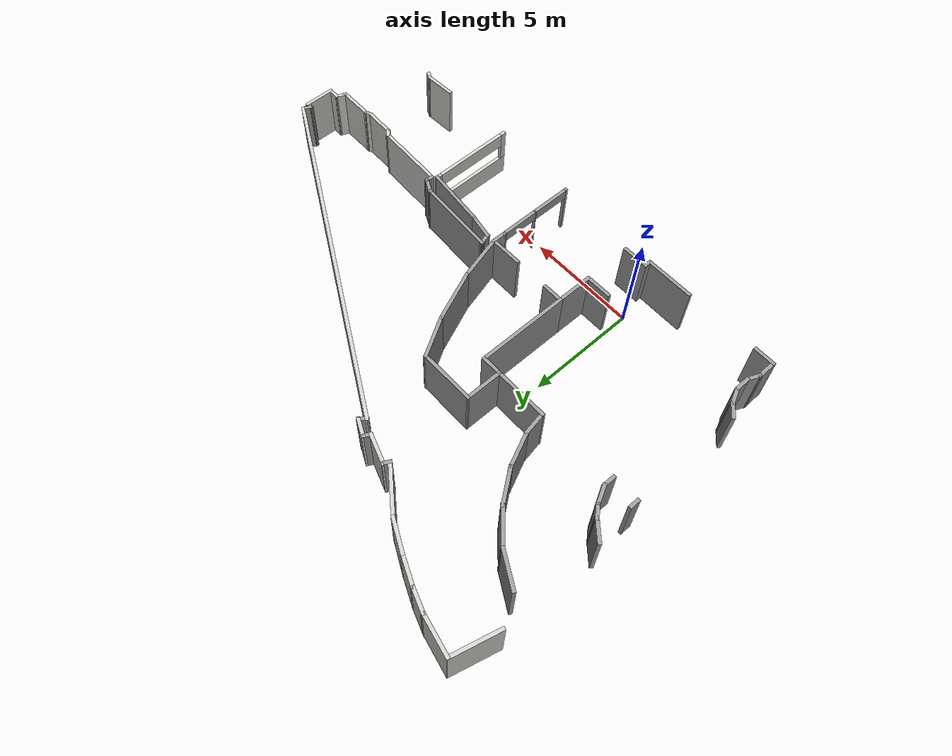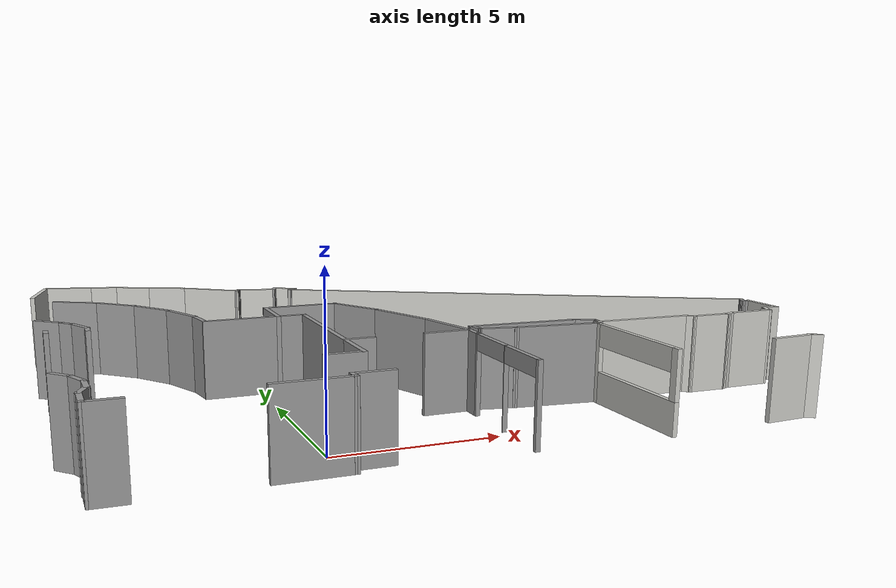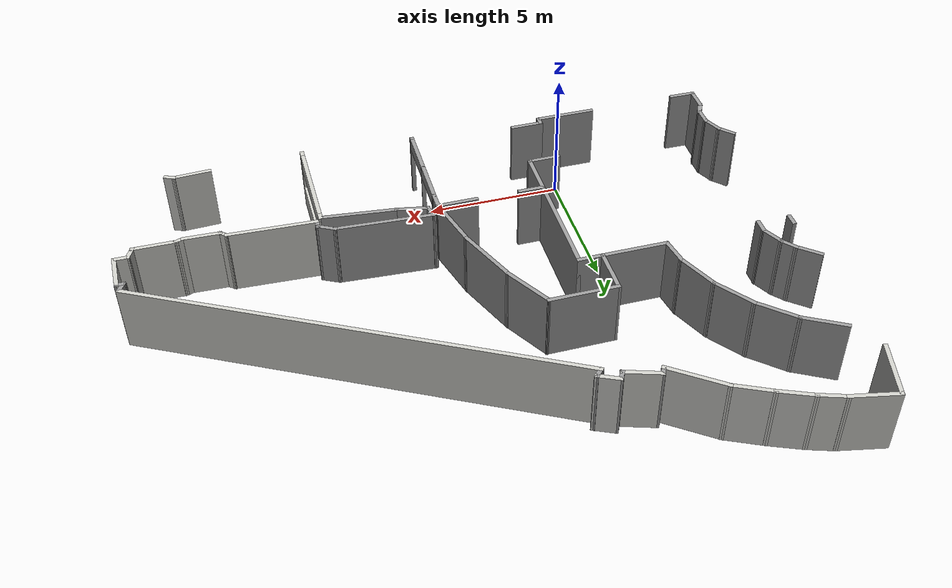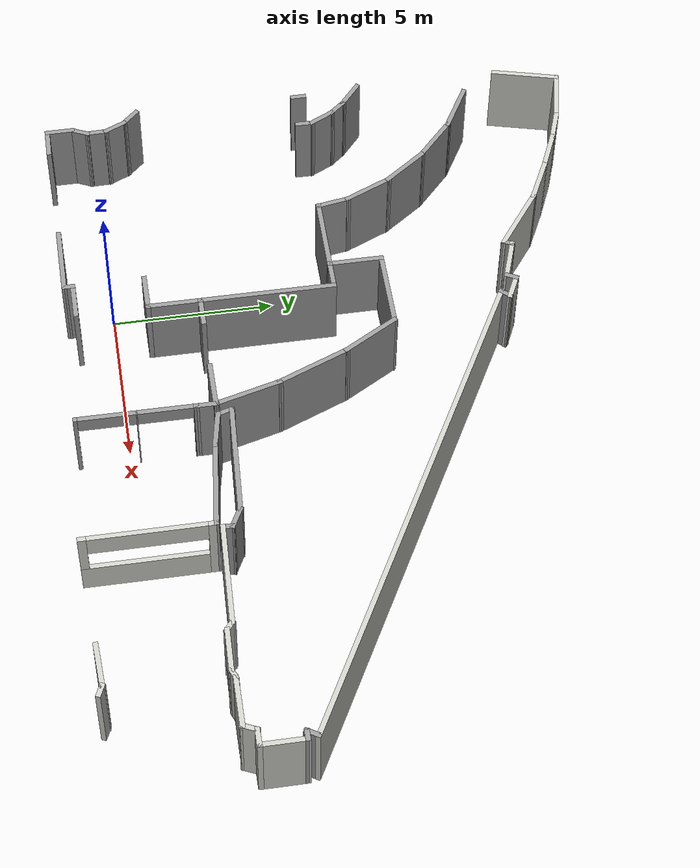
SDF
<sdf version="1.7">
 <model name="model">
  <pose>-4.1341 -0.059214 0 0 -0 0</pose>
  <link name="Wall_10">
   <collision name="Wall_10_Collision">
    <geometry><box><size>1.42547 0.15 2.5</size></box></geometry>
    <pose>0 0 1.25 0 -0 0</pose>
   </collision>
   <visual name="Wall_10_Visual">
    <pose>0 0 1.25 0 -0 0</pose>
    <geometry><box><size>1.42547 0.15 2.5</size></box></geometry>
    <material>
     <script><uri>file://media/materials/scripts/gazebo.material</uri><name>Gazebo/CeilingTiled</name></script>
     <ambient>1 1 1 1</ambient>
    </material>
    <meta><layer>0</layer></meta>
   </visual>
   <pose>17.742 2.04987 0 0 -0 3.11021</pose>
  </link>
  <link name="Wall_11">
   <collision name="Wall_11_Collision">
    <geometry><box><size>0.422349 0.15 2.5</size></box></geometry>
    <pose>0 0 1.25 0 -0 0</pose>
   </collision>
   <visual name="Wall_11_Visual">
    <pose>0 0 1.25 0 -0 0</pose>
    <geometry><box><size>0.422349 0.15 2.5</size></box></geometry>
    <material>
     <script><uri>file://media/materials/scripts/gazebo.material</uri><name>Gazebo/CeilingTiled</name></script>
     <ambient>1 1 1 1</ambient>
    </material>
    <meta><layer>0</layer></meta>
   </visual>
   <pose>16.9987 2.15564 0 0 -0 2.46029</pose>
  </link>
  <link name="Wall_113">
   <collision name="Wall_113_Collision">
    <geometry><box><size>2.16942 0.15 2.5</size></box></geometry>
    <pose>0 0 1.25 0 -0 0</pose>
   </collision>
   <visual name="Wall_113_Visual">
    <pose>0 0 1.25 0 -0 0</pose>
    <geometry><box><size>2.16942 0.15 2.5</size></box></geometry>
    <material>
     <script><uri>file://media/materials/scripts/gazebo.material</uri><name>Gazebo/CeilingTiled</name></script>
     <ambient>0.964706 1 0.972549 1</ambient>
    </material>
    <meta><layer>0</layer></meta>
   </visual>
   <pose>-2.22567 14.2971 0 0 -0 1.31753</pose>
  </link>
  <link name="Wall_118">
   <collision name="Wall_118_Collision">
    <geometry><box><size>2.26593 0.15 2.5</size></box></geometry>
    <pose>0 0 1.25 0 -0 0</pose>
   </collision>
   <visual name="Wall_118_Visual">
    <pose>0 0 1.25 0 -0 0</pose>
    <geometry><box><size>2.26593 0.15 2.5</size></box></geometry>
    <material>
     <script><uri>file://media/materials/scripts/gazebo.material</uri><name>Gazebo/CeilingTiled</name></script>
     <ambient>0.964706 1 0.972549 1</ambient>
    </material>
    <meta><layer>0</layer></meta>
   </visual>
   <pose>3.7645 12.9158 0 0 -0 2.50012</pose>
  </link>
  <link name="Wall_119">
   <collision name="Wall_119_Collision">
    <geometry><box><size>1.52296 0.15 2.5</size></box></geometry>
    <pose>0 0 1.25 0 -0 0</pose>
   </collision>
   <visual name="Wall_119_Visual">
    <pose>0 0 1.25 0 -0 0</pose>
    <geometry><box><size>1.52296 0.15 2.5</size></box></geometry>
    <material>
     <script><uri>file://media/materials/scripts/gazebo.material</uri><name>Gazebo/CeilingTiled</name></script>
     <ambient>0.964706 1 0.972549 1</ambient>
    </material>
    <meta><layer>0</layer></meta>
   </visual>
   <pose>2.30059 13.8514 0 0 -0 2.68533</pose>
  </link>
  <link name="Wall_12">
   <collision name="Wall_12_Collision">
    <geometry><box><size>3.29739 0.15 2.5</size></box></geometry>
    <pose>0 0 1.25 0 -0 0</pose>
   </collision>
   <visual name="Wall_12_Visual">
    <pose>0 0 1.25 0 -0 0</pose>
    <geometry><box><size>3.29739 0.15 2.5</size></box></geometry>
    <material>
     <script><uri>file://media/materials/scripts/gazebo.material</uri><name>Gazebo/CeilingTiled</name></script>
     <ambient>0.964706 1 0.972549 1</ambient>
    </material>
    <meta><layer>0</layer></meta>
   </visual>
   <pose>15.3206 2.30716 0 0 -0 3.0998</pose>
  </link>
  <link name="Wall_120">
   <collision name="Wall_120_Collision">
    <geometry><box><size>1.38613 0.15 2.5</size></box></geometry>
    <pose>0 0 1.25 0 -0 0</pose>
   </collision>
   <visual name="Wall_120_Visual">
    <pose>0 0 1.25 0 -0 0</pose>
    <geometry><box><size>1.38613 0.15 2.5</size></box></geometry>
    <material>
     <script><uri>file://media/materials/scripts/gazebo.material</uri><name>Gazebo/CeilingTiled</name></script>
     <ambient>0.964706 1 0.972549 1</ambient>
    </material>
    <meta><layer>0</layer></meta>
   </visual>
   <pose>1.11722 14.3996 0 0 -0 2.73269</pose>
  </link>
  <link name="Wall_121">
   <collision name="Wall_121_Collision">
    <geometry><box><size>1.10172 0.15 2.5</size></box></geometry>
    <pose>0 0 1.25 0 -0 0</pose>
   </collision>
   <visual name="Wall_121_Visual">
    <pose>0 0 1.25 0 -0 0</pose>
    <geometry><box><size>1.10172 0.15 2.5</size></box></geometry>
    <material>
     <script><uri>file://media/materials/scripts/gazebo.material</uri><name>Gazebo/CeilingTiled</name></script>
     <ambient>0.964706 1 0.972549 1</ambient>
    </material>
    <meta><layer>0</layer></meta>
   </visual>
   <pose>0.100208 14.8003 0 0 -0 2.80979</pose>
  </link>
  <link name="Wall_122">
   <collision name="Wall_122_Collision">
    <geometry><box><size>1.79614 0.15 2.5</size></box></geometry>
    <pose>0 0 1.25 0 -0 0</pose>
   </collision>
   <visual name="Wall_122_Visual">
    <pose>0 0 1.25 0 -0 0</pose>
    <geometry><box><size>1.79614 0.15 2.5</size></box></geometry>
    <material>
     <script><uri>file://media/materials/scripts/gazebo.material</uri><name>Gazebo/CeilingTiled</name></script>
     <ambient>0.964706 1 0.972549 1</ambient>
    </material>
    <meta><layer>0</layer></meta>
   </visual>
   <pose>-1.15499 15.1255 0 0 -0 2.93339</pose>
  </link>
  <link name="Wall_124">
   <collision name="Wall_124_Collision">
    <geometry><box><size>0.404275 0.15 2.5</size></box></geometry>
    <pose>0 0 1.25 0 -0 0</pose>
   </collision>
   <visual name="Wall_124_Visual">
    <pose>0 0 1.25 0 -0 0</pose>
    <geometry><box><size>0.404275 0.15 2.5</size></box></geometry>
    <material>
     <script><uri>file://media/materials/scripts/gazebo.material</uri><name>Gazebo/Grey</name></script>
     <ambient>1 1 1 1</ambient>
    </material>
    <meta><layer>0</layer></meta>
   </visual>
   <pose>4.66935 12.3963 0 0 -0 1.10417</pose>
  </link>
  <link name="Wall_125">
   <collision name="Wall_125_Collision">
    <geometry><box><size>1.41013 0.15 2.5</size></box></geometry>
    <pose>0 0 1.25 0 -0 0</pose>
   </collision>
   <visual name="Wall_125_Visual">
    <pose>0 0 1.25 0 -0 0</pose>
    <geometry><box><size>1.41013 0.15 2.5</size></box></geometry>
    <material>
     <script><uri>file://media/materials/scripts/gazebo.material</uri><name>Gazebo/CeilingTiled</name></script>
     <ambient>0.964706 1 0.972549 1</ambient>
    </material>
    <meta><layer>0</layer></meta>
   </visual>
   <pose>5.3239 12.3095 0 0 -0 -0.323648</pose>
  </link>
  <link name="Wall_126">
   <collision name="Wall_126_Collision">
    <geometry><box><size>0.447598 0.15 2.5</size></box></geometry>
    <pose>0 0 1.25 0 -0 0</pose>
   </collision>
   <visual name="Wall_126_Visual">
    <pose>0 0 1.25 0 -0 0</pose>
    <geometry><box><size>0.447598 0.15 2.5</size></box></geometry>
    <material>
     <script><uri>file://media/materials/scripts/gazebo.material</uri><name>Gazebo/Grey</name></script>
     <ambient>1 1 1 1</ambient>
    </material>
    <meta><layer>0</layer></meta>
   </visual>
   <pose>5.98931 12.2414 0 0 -0 1.09579</pose>
  </link>
  <link name="Wall_127">
   <collision name="Wall_127_Collision">
    <geometry><box><size>0.894139 0.15 2.5</size></box></geometry>
    <pose>0 0 1.25 0 -0 0</pose>
   </collision>
   <visual name="Wall_127_Visual">
    <pose>0 0 1.25 0 -0 0</pose>
    <geometry><box><size>0.894139 0.15 2.5</size></box></geometry>
    <material>
     <script><uri>file://media/materials/scripts/gazebo.material</uri><name>Gazebo/CeilingTiled</name></script>
     <ambient>0.964706 1 0.972549 1</ambient>
    </material>
    <meta><layer>0</layer></meta>
   </visual>
   <pose>6.39384 12.215 0 0 -0 -0.440924</pose>
  </link>
  <link name="Wall_128">
   <collision name="Wall_128_Collision">
    <geometry><box><size>0.468928 0.15 2.5</size></box></geometry>
    <pose>0 0 1.25 0 -0 0</pose>
   </collision>
   <visual name="Wall_128_Visual">
    <pose>0 0 1.25 0 -0 0</pose>
    <geometry><box><size>0.468928 0.15 2.5</size></box></geometry>
    <material>
     <script><uri>file://media/materials/scripts/gazebo.material</uri><name>Gazebo/Grey</name></script>
     <ambient>1 1 1 1</ambient>
    </material>
    <meta><layer>0</layer></meta>
   </visual>
   <pose>6.62336 11.9379 0 0 -0 -2.30603</pose>
  </link>
  <link name="Wall_129">
   <collision name="Wall_129_Collision">
    <geometry><box><size>16.2931 0.15 2.5</size></box></geometry>
    <pose>0 0 1.25 0 -0 0</pose>
   </collision>
   <visual name="Wall_129_Visual">
    <pose>0 0 1.25 0 -0 0</pose>
    <geometry><box><size>16.2931 0.15 2.5</size></box></geometry>
    <material>
     <script><uri>file://media/materials/scripts/gazebo.material</uri><name>Gazebo/CeilingTiled</name></script>
     <ambient>0.964706 1 0.972549 1</ambient>
    </material>
    <meta><layer>0</layer></meta>
   </visual>
   <pose>13.6044 7.95817 0 0 -0 -0.498838</pose>
  </link>
  <link name="Wall_13">
   <collision name="Wall_13_Collision">
    <geometry><box><size>0.430684 0.15 2.5</size></box></geometry>
    <pose>0 0 1.25 0 -0 0</pose>
   </collision>
   <visual name="Wall_13_Visual">
    <pose>0 0 1.25 0 -0 0</pose>
    <geometry><box><size>0.430684 0.15 2.5</size></box></geometry>
    <material>
     <script><uri>file://media/materials/scripts/gazebo.material</uri><name>Gazebo/Grey</name></script>
     <ambient>1 1 1 1</ambient>
    </material>
    <meta><layer>0</layer></meta>
   </visual>
   <pose>13.7569 2.51299 0 0 -0 1.50965</pose>
  </link>
  <link name="Wall_16">
   <collision name="Wall_16_Collision">
    <geometry><box><size>0.771179 0.15 2.5</size></box></geometry>
    <pose>0 0 1.25 0 -0 0</pose>
   </collision>
   <visual name="Wall_16_Visual">
    <pose>0 0 1.25 0 -0 0</pose>
    <geometry><box><size>0.771179 0.15 2.5</size></box></geometry>
    <material>
     <script><uri>file://media/materials/scripts/gazebo.material</uri><name>Gazebo/Grey</name></script>
     <ambient>1 1 1 1</ambient>
    </material>
    <meta><layer>0</layer></meta>
   </visual>
   <pose>13.4901 2.7968 0 0 -0 2.6605</pose>
  </link>
  <link name="Wall_17">
   <collision name="Wall_17_Collision">
    <geometry><box><size>3.65354 0.15 2.5</size></box></geometry>
    <pose>0 0 1.25 0 -0 0</pose>
   </collision>
   <visual name="Wall_17_Visual">
    <pose>0 0 1.25 0 -0 0</pose>
    <geometry><box><size>3.65354 0.15 2.5</size></box></geometry>
    <material>
     <script><uri>file://media/materials/scripts/gazebo.material</uri><name>Gazebo/Grey</name></script>
     <ambient>1 1 1 1</ambient>
    </material>
    <meta><layer>0</layer></meta>
   </visual>
   <pose>11.4658 3.03915 0 0 -0 3.08526</pose>
  </link>
  <link name="Wall_18">
   <collision name="Wall_18_Collision">
    <geometry><box><size>0.585403 0.15 2.5</size></box></geometry>
    <pose>0 0 1.25 0 -0 0</pose>
   </collision>
   <visual name="Wall_18_Visual">
    <pose>0 0 1.25 0 -0 0</pose>
    <geometry><box><size>0.585403 0.15 2.5</size></box></geometry>
    <material>
     <script><uri>file://media/materials/scripts/gazebo.material</uri><name>Gazebo/Grey</name></script>
     <ambient>1 1 1 1</ambient>
    </material>
    <meta><layer>0</layer></meta>
   </visual>
   <pose>9.77269 2.92737 0 0 -0 -1.31117</pose>
  </link>
  <link name="Wall_19">
   <collision name="Wall_19_Collision">
    <geometry><box><size>1.25295 0.15 2.5</size></box></geometry>
    <pose>0 0 1.25 0 -0 0</pose>
   </collision>
   <visual name="Wall_19_Visual">
    <pose>0 0 1.25 0 -0 0</pose>
    <geometry><box><size>1.25295 0.15 2.5</size></box></geometry>
    <material>
     <script><uri>file://media/materials/scripts/gazebo.material</uri><name>Gazebo/Grey</name></script>
     <ambient>1 1 1 1</ambient>
    </material>
    <meta><layer>0</layer></meta>
   </visual>
   <pose>10.3696 2.61005 0 0 -0 -0.195106</pose>
  </link>
  <link name="Wall_2">
   <collision name="Wall_2_Collision">
    <geometry><box><size>0.5 0.15 2.5</size></box></geometry>
    <pose>0 0 1.25 0 -0 0</pose>
   </collision>
   <visual name="Wall_2_Visual">
    <pose>0 0 1.25 0 -0 0</pose>
    <geometry><box><size>0.5 0.15 2.5</size></box></geometry>
    <material>
     <script><uri>file://media/materials/scripts/gazebo.material</uri><name>Gazebo/Grey</name></script>
     <ambient>0.964706 1 0.972549 1</ambient>
    </material>
    <meta><layer>0</layer></meta>
   </visual>
   <pose>20.5997 3.94248 0 0 -0 -2.0944</pose>
  </link>
  <link name="Wall_20">
   <collision name="Wall_20_Collision">
    <geometry><box><size>2.84893 0.15 2.5</size></box></geometry>
    <pose>0 0 1.25 0 -0 0</pose>
   </collision>
   <visual name="Wall_20_Visual">
    <pose>0 0 1.25 0 -0 0</pose>
    <geometry><box><size>2.84893 0.15 2.5</size></box></geometry>
    <material>
     <script><uri>file://media/materials/scripts/gazebo.material</uri><name>Gazebo/Grey</name></script>
     <ambient>1 1 1 1</ambient>
    </material>
    <meta><layer>0</layer></meta>
   </visual>
   <pose>12.2519 2.35519 0 0 -0 -0.10985</pose>
  </link>
  <link name="Wall_206">
   <collision name="Wall_206_Collision">
    <geometry><box><size>2.27583 0.15 2.5</size></box></geometry>
    <pose>0 0 1.25 0 -0 0</pose>
   </collision>
   <visual name="Wall_206_Visual">
    <pose>0 0 1.25 0 -0 0</pose>
    <geometry><box><size>2.27583 0.15 2.5</size></box></geometry>
    <material>
     <script><uri>file://media/materials/scripts/gazebo.material</uri><name>Gazebo/Grey</name></script>
     <ambient>1 1 1 1</ambient>
    </material>
    <meta><layer>0</layer></meta>
   </visual>
   <pose>3.38467 -1.33441 0 0 -0 -0.005672</pose>
  </link>
  <link name="Wall_208">
   <collision name="Wall_208_Collision">
    <geometry><box><size>0.413006 0.15 2.5</size></box></geometry>
    <pose>0 0 1.25 0 -0 0</pose>
   </collision>
   <visual name="Wall_208_Visual">
    <pose>0 0 1.25 0 -0 0</pose>
    <geometry><box><size>0.413006 0.15 2.5</size></box></geometry>
    <material>
     <script><uri>file://media/materials/scripts/gazebo.material</uri><name>Gazebo/Grey</name></script>
     <ambient>1 1 1 1</ambient>
    </material>
    <meta><layer>0</layer></meta>
   </visual>
   <pose>4.44758 -1.20894 0 0 -0 1.5708</pose>
  </link>
  <link name="Wall_226">
   <collision name="Wall_226_Collision">
    <geometry><box><size>1.25 0.15 2.5</size></box></geometry>
    <pose>0 0 1.25 0 -0 0</pose>
   </collision>
   <visual name="Wall_226_Visual">
    <pose>0 0 1.25 0 -0 0</pose>
    <geometry><box><size>1.25 0.15 2.5</size></box></geometry>
    <material>
     <script><uri>file://media/materials/scripts/gazebo.material</uri><name>Gazebo/Grey</name></script>
     <ambient>1 1 1 1</ambient>
    </material>
    <meta><layer>0</layer></meta>
   </visual>
   <pose>4.99758 -1.07743 0 0 -0 0</pose>
  </link>
  <link name="Wall_23">
   <pose>13.5923 0.25608 0 0 -0 -1.5713</pose>
   <visual name="Wall_23_Visual_0">
    <pose>-1.87272 0 1.25 0 -0 0</pose>
    <geometry><box><size>0.306899 0.15 2.5</size></box></geometry>
    <material>
     <script><uri>file://media/materials/scripts/gazebo.material</uri><name>Gazebo/CeilingTiled</name></script>
     <ambient>0.964706 1 0.972549 1</ambient>
    </material>
    <meta><layer>0</layer></meta>
   </visual>
   <collision name="Wall_23_Collision_0">
    <geometry><box><size>0.306899 0.15 2.5</size></box></geometry>
    <pose>-1.87272 0 1.25 0 -0 0</pose>
   </collision>
   <visual name="Wall_23_Visual_1">
    <pose>0.15345 0 0.5 0 -0 0</pose>
    <geometry><box><size>3.74545 0.15 1</size></box></geometry>
    <material>
     <script><uri>file://media/materials/scripts/gazebo.material</uri><name>Gazebo/CeilingTiled</name></script>
     <ambient>0.964706 1 0.972549 1</ambient>
    </material>
    <meta><layer>0</layer></meta>
   </visual>
   <collision name="Wall_23_Collision_1">
    <geometry><box><size>3.74545 0.15 1</size></box></geometry>
    <pose>0.15345 0 0.5 0 -0 0</pose>
   </collision>
   <visual name="Wall_23_Visual_2">
    <pose>1.89845 0 1.75 0 -0 0</pose>
    <geometry><box><size>0.255448 0.15 1.5</size></box></geometry>
    <material>
     <script><uri>file://media/materials/scripts/gazebo.material</uri><name>Gazebo/CeilingTiled</name></script>
     <ambient>0.964706 1 0.972549 1</ambient>
    </material>
    <meta><layer>0</layer></meta>
   </visual>
   <collision name="Wall_23_Collision_2">
    <geometry><box><size>0.255448 0.15 1.5</size></box></geometry>
    <pose>1.89845 0 1.75 0 -0 0</pose>
   </collision>
   <visual name="Wall_23_Visual_3">
    <pose>0.025726 0 2.15 0 -0 0</pose>
    <geometry><box><size>3.49 0.15 0.7</size></box></geometry>
    <material>
     <script><uri>file://media/materials/scripts/gazebo.material</uri><name>Gazebo/CeilingTiled</name></script>
     <ambient>0.964706 1 0.972549 1</ambient>
    </material>
    <meta><layer>0</layer></meta>
   </visual>
   <collision name="Wall_23_Collision_3">
    <geometry><box><size>3.49 0.15 0.7</size></box></geometry>
    <pose>0.025726 0 2.15 0 -0 0</pose>
   </collision>
  </link>
  <link name="Wall_231">
   <collision name="Wall_231_Collision">
    <geometry><box><size>0.75 0.15 2.5</size></box></geometry>
    <pose>0 0 1.25 0 -0 0</pose>
   </collision>
   <visual name="Wall_231_Visual">
    <pose>0 0 1.25 0 -0 0</pose>
    <geometry><box><size>0.75 0.15 2.5</size></box></geometry>
    <material>
     <script><uri>file://media/materials/scripts/gazebo.material</uri><name>Gazebo/Grey</name></script>
     <ambient>1 1 1 1</ambient>
    </material>
    <meta><layer>0</layer></meta>
   </visual>
   <pose>9.44804 2.42522 0 0 -0 1.5708</pose>
  </link>
  <link name="Wall_238">
   <collision name="Wall_238_Collision">
    <geometry><box><size>2.5 0.15 2.5</size></box></geometry>
    <pose>0 0 1.25 0 -0 0</pose>
   </collision>
   <visual name="Wall_238_Visual">
    <pose>0 0 1.25 0 -0 0</pose>
    <geometry><box><size>2.5 0.15 2.5</size></box></geometry>
    <material>
     <script><uri>file://media/materials/scripts/gazebo.material</uri><name>Gazebo/Grey</name></script>
     <ambient>1 1 1 1</ambient>
    </material>
    <meta><layer>0</layer></meta>
   </visual>
   <pose>3.52465 6.8111 0 0 -0 0</pose>
  </link>
  <link name="Wall_239">
   <collision name="Wall_239_Collision">
    <geometry><box><size>1.7501 0.15 2.5</size></box></geometry>
    <pose>0 0 1.25 0 -0 0</pose>
   </collision>
   <visual name="Wall_239_Visual">
    <pose>0 0 1.25 0 -0 0</pose>
    <geometry><box><size>1.7501 0.15 2.5</size></box></geometry>
    <material>
     <script><uri>file://media/materials/scripts/gazebo.material</uri><name>Gazebo/Grey</name></script>
     <ambient>1 1 1 1</ambient>
    </material>
    <meta><layer>0</layer></meta>
   </visual>
   <pose>4.69965 7.6111 0 0 -0 1.5708</pose>
  </link>
  <link name="Wall_242">
   <collision name="Wall_242_Collision">
    <geometry><box><size>2.5748 0.15 2.5</size></box></geometry>
    <pose>0 0 1.25 0 -0 0</pose>
   </collision>
   <visual name="Wall_242_Visual">
    <pose>0 0 1.25 0 -0 0</pose>
    <geometry><box><size>2.5748 0.15 2.5</size></box></geometry>
    <material>
     <script><uri>file://media/materials/scripts/gazebo.material</uri><name>Gazebo/Grey</name></script>
     <ambient>1 1 1 1</ambient>
    </material>
    <meta><layer>0</layer></meta>
   </visual>
   <pose>5.91205 8.41564 0 0 -0 0.003747</pose>
  </link>
  <link name="Wall_243">
   <collision name="Wall_243_Collision">
    <geometry><box><size>2 0.15 2.5</size></box></geometry>
    <pose>0 0 1.25 0 -0 0</pose>
   </collision>
   <visual name="Wall_243_Visual">
    <pose>0 0 1.25 0 -0 0</pose>
    <geometry><box><size>2 0.15 2.5</size></box></geometry>
    <material>
     <script><uri>file://media/materials/scripts/gazebo.material</uri><name>Gazebo/Grey</name></script>
     <ambient>1 1 1 1</ambient>
    </material>
    <meta><layer>0</layer></meta>
   </visual>
   <pose>7.58694 7.61911 0 0 -0 -1.0472</pose>
  </link>
  <link name="Wall_244">
   <collision name="Wall_244_Collision">
    <geometry><box><size>2.46321 0.15 2.5</size></box></geometry>
    <pose>0 0 1.25 0 -0 0</pose>
   </collision>
   <visual name="Wall_244_Visual">
    <pose>0 0 1.25 0 -0 0</pose>
    <geometry><box><size>2.46321 0.15 2.5</size></box></geometry>
    <material>
     <script><uri>file://media/materials/scripts/gazebo.material</uri><name>Gazebo/Grey</name></script>
     <ambient>1 1 1 1</ambient>
    </material>
    <meta><layer>0</layer></meta>
   </visual>
   <pose>8.48768 5.74767 0 0 -0 -1.18219</pose>
  </link>
  <link name="Wall_245">
   <collision name="Wall_245_Collision">
    <geometry><box><size>2.19484 0.15 2.5</size></box></geometry>
    <pose>0 0 1.25 0 -0 0</pose>
   </collision>
   <visual name="Wall_245_Visual">
    <pose>0 0 1.25 0 -0 0</pose>
    <geometry><box><size>2.19484 0.15 2.5</size></box></geometry>
    <material>
     <script><uri>file://media/materials/scripts/gazebo.material</uri><name>Gazebo/Grey</name></script>
     <ambient>1 1 1 1</ambient>
    </material>
    <meta><layer>0</layer></meta>
   </visual>
   <pose>9.18827 3.68912 0 0 -0 -1.3113</pose>
  </link>
  <link name="Wall_247">
   <collision name="Wall_247_Collision">
    <geometry><box><size>1 0.15 2.5</size></box></geometry>
    <pose>0 0 1.25 0 -0 0</pose>
   </collision>
   <visual name="Wall_247_Visual">
    <pose>0 0 1.25 0 -0 0</pose>
    <geometry><box><size>1 0.15 2.5</size></box></geometry>
    <material>
     <script><uri>file://media/materials/scripts/gazebo.material</uri><name>Gazebo/Grey</name></script>
     <ambient>1 1 1 1</ambient>
    </material>
    <meta><layer>0</layer></meta>
   </visual>
   <pose>5.12465 6.8111 0 0 -0 0</pose>
  </link>
  <link name="Wall_249">
   <collision name="Wall_249_Collision">
    <geometry><box><size>4.25 0.15 2.5</size></box></geometry>
    <pose>0 0 1.25 0 -0 0</pose>
   </collision>
   <visual name="Wall_249_Visual">
    <pose>0 0 1.25 0 -0 0</pose>
    <geometry><box><size>4.25 0.15 2.5</size></box></geometry>
    <material>
     <script><uri>file://media/materials/scripts/gazebo.material</uri><name>Gazebo/Grey</name></script>
     <ambient>1 1 1 1</ambient>
    </material>
    <meta><layer>0</layer></meta>
   </visual>
   <pose>5.54965 4.7611 0 0 -0 -1.5708</pose>
  </link>
  <link name="Wall_251">
   <collision name="Wall_251_Collision">
    <geometry><box><size>1 0.15 2.5</size></box></geometry>
    <pose>0 0 1.25 0 -0 0</pose>
   </collision>
   <visual name="Wall_251_Visual">
    <pose>0 0 1.25 0 -0 0</pose>
    <geometry><box><size>1 0.15 2.5</size></box></geometry>
    <material>
     <script><uri>file://media/materials/scripts/gazebo.material</uri><name>Gazebo/Grey</name></script>
     <ambient>1 1 1 1</ambient>
    </material>
    <meta><layer>0</layer></meta>
   </visual>
   <pose>5.97465 2.7111 0 0 -0 0</pose>
  </link>
  <link name="Wall_253">
   <collision name="Wall_253_Collision">
    <geometry><box><size>1.75 0.15 2.5</size></box></geometry>
    <pose>0 0 1.25 0 -0 0</pose>
   </collision>
   <visual name="Wall_253_Visual">
    <pose>0 0 1.25 0 -0 0</pose>
    <geometry><box><size>1.75 0.15 2.5</size></box></geometry>
    <material>
     <script><uri>file://media/materials/scripts/gazebo.material</uri><name>Gazebo/Grey</name></script>
     <ambient>1 1 1 1</ambient>
    </material>
    <meta><layer>0</layer></meta>
   </visual>
   <pose>5.54965 1.9111 0 0 -0 -1.5708</pose>
  </link>
  <link name="Wall_254">
   <collision name="Wall_254_Collision">
    <geometry><box><size>1.25 0.15 2.5</size></box></geometry>
    <pose>0 0 1.25 0 -0 0</pose>
   </collision>
   <visual name="Wall_254_Visual">
    <pose>0 0 1.25 0 -0 0</pose>
    <geometry><box><size>1.25 0.15 2.5</size></box></geometry>
    <material>
     <script><uri>file://media/materials/scripts/gazebo.material</uri><name>Gazebo/Grey</name></script>
     <ambient>1 1 1 1</ambient>
    </material>
    <meta><layer>0</layer></meta>
   </visual>
   <pose>4.99965 1.1111 0 0 -0 3.14159</pose>
  </link>
  <link name="Wall_258">
   <collision name="Wall_258_Collision">
    <geometry><box><size>1.5546 0.15 2.5</size></box></geometry>
    <pose>0 0 1.25 0 -0 0</pose>
   </collision>
   <visual name="Wall_258_Visual">
    <pose>0 0 1.25 0 -0 0</pose>
    <geometry><box><size>1.5546 0.15 2.5</size></box></geometry>
    <material>
     <script><uri>file://media/materials/scripts/gazebo.material</uri><name>Gazebo/Grey</name></script>
     <ambient>1 1 1 1</ambient>
    </material>
    <meta><layer>0</layer></meta>
   </visual>
   <pose>8.74832 2.69877 0 0 -0 0.003078</pose>
  </link>
  <link name="Wall_278">
   <collision name="Wall_278_Collision">
    <geometry><box><size>1.68932 0.15 2.5</size></box></geometry>
    <pose>0 0 1.25 0 -0 0</pose>
   </collision>
   <visual name="Wall_278_Visual">
    <pose>0 0 1.25 0 -0 0</pose>
    <geometry><box><size>1.68932 0.15 2.5</size></box></geometry>
    <material>
     <script><uri>file://media/materials/scripts/gazebo.material</uri><name>Gazebo/Grey</name></script>
     <ambient>1 1 1 1</ambient>
    </material>
    <meta><layer>0</layer></meta>
   </visual>
   <pose>-1.11848 11.8058 0 0 -0 -0.516695</pose>
  </link>
  <link name="Wall_279">
   <collision name="Wall_279_Collision">
    <geometry><box><size>1.69995 0.15 2.5</size></box></geometry>
    <pose>0 0 1.25 0 -0 0</pose>
   </collision>
   <visual name="Wall_279_Visual">
    <pose>0 0 1.25 0 -0 0</pose>
    <geometry><box><size>1.69995 0.15 2.5</size></box></geometry>
    <material>
     <script><uri>file://media/materials/scripts/gazebo.material</uri><name>Gazebo/Grey</name></script>
     <ambient>1 1 1 1</ambient>
    </material>
    <meta><layer>0</layer></meta>
   </visual>
   <pose>0.121028 10.9009 0 0 -0 -0.743756</pose>
  </link>
  <link name="Wall_280">
   <collision name="Wall_280_Collision">
    <geometry><box><size>1.67406 0.15 2.5</size></box></geometry>
    <pose>0 0 1.25 0 -0 0</pose>
   </collision>
   <visual name="Wall_280_Visual">
    <pose>0 0 1.25 0 -0 0</pose>
    <geometry><box><size>1.67406 0.15 2.5</size></box></geometry>
    <material>
     <script><uri>file://media/materials/scripts/gazebo.material</uri><name>Gazebo/Grey</name></script>
     <ambient>1 1 1 1</ambient>
    </material>
    <meta><layer>0</layer></meta>
   </visual>
   <pose>1.14001 9.76027 0 0 -0 -0.941266</pose>
  </link>
  <link name="Wall_281">
   <collision name="Wall_281_Collision">
    <geometry><box><size>1.6618 0.15 2.5</size></box></geometry>
    <pose>0 0 1.25 0 -0 0</pose>
   </collision>
   <visual name="Wall_281_Visual">
    <pose>0 0 1.25 0 -0 0</pose>
    <geometry><box><size>1.6618 0.15 2.5</size></box></geometry>
    <material>
     <script><uri>file://media/materials/scripts/gazebo.material</uri><name>Gazebo/Grey</name></script>
     <ambient>1 1 1 1</ambient>
    </material>
    <meta><layer>0</layer></meta>
   </visual>
   <pose>1.89285 8.45231 0 0 -0 -1.15666</pose>
  </link>
  <link name="Wall_282">
   <collision name="Wall_282_Collision">
    <geometry><box><size>1.07511 0.15 2.5</size></box></geometry>
    <pose>0 0 1.25 0 -0 0</pose>
   </collision>
   <visual name="Wall_282_Visual">
    <pose>0 0 1.25 0 -0 0</pose>
    <geometry><box><size>1.07511 0.15 2.5</size></box></geometry>
    <material>
     <script><uri>file://media/materials/scripts/gazebo.material</uri><name>Gazebo/Grey</name></script>
     <ambient>1 1 1 1</ambient>
    </material>
    <meta><layer>0</layer></meta>
   </visual>
   <pose>2.27307 7.30405 0 0 -0 -1.40565</pose>
  </link>
  <link name="Wall_290">
   <collision name="Wall_290_Collision">
    <geometry><box><size>1.03435 0.15 2.5</size></box></geometry>
    <pose>0 0 1.25 0 -0 0</pose>
   </collision>
   <visual name="Wall_290_Visual">
    <pose>0 0 1.25 0 -0 0</pose>
    <geometry><box><size>1.03435 0.15 2.5</size></box></geometry>
    <material>
     <script><uri>file://media/materials/scripts/gazebo.material</uri><name>Gazebo/Grey</name></script>
     <ambient>1 1 1 1</ambient>
    </material>
    <meta><layer>0</layer></meta>
   </visual>
   <pose>-2.17403 8.51041 0 0 -0 -0.703016</pose>
  </link>
  <link name="Wall_291">
   <collision name="Wall_291_Collision">
    <geometry><box><size>0.701971 0.15 2.5</size></box></geometry>
    <pose>0 0 1.25 0 -0 0</pose>
   </collision>
   <visual name="Wall_291_Visual">
    <pose>0 0 1.25 0 -0 0</pose>
    <geometry><box><size>0.701971 0.15 2.5</size></box></geometry>
    <material>
     <script><uri>file://media/materials/scripts/gazebo.material</uri><name>Gazebo/Grey</name></script>
     <ambient>1 1 1 1</ambient>
    </material>
    <meta><layer>0</layer></meta>
   </visual>
   <pose>-1.65946 8.01299 0 0 -0 -0.873406</pose>
  </link>
  <link name="Wall_292">
   <collision name="Wall_292_Collision">
    <geometry><box><size>0.911978 0.15 2.5</size></box></geometry>
    <pose>0 0 1.25 0 -0 0</pose>
   </collision>
   <visual name="Wall_292_Visual">
    <pose>0 0 1.25 0 -0 0</pose>
    <geometry><box><size>0.911978 0.15 2.5</size></box></geometry>
    <material>
     <script><uri>file://media/materials/scripts/gazebo.material</uri><name>Gazebo/Grey</name></script>
     <ambient>1 1 1 1</ambient>
    </material>
    <meta><layer>0</layer></meta>
   </visual>
   <pose>-1.31069 7.46125 0 0 -0 -1.10379</pose>
  </link>
  <link name="Wall_294">
   <collision name="Wall_294_Collision">
    <geometry><box><size>0.620114 0.15 2.5</size></box></geometry>
    <pose>0 0 1.25 0 -0 0</pose>
   </collision>
   <visual name="Wall_294_Visual">
    <pose>0 0 1.25 0 -0 0</pose>
    <geometry><box><size>0.620114 0.15 2.5</size></box></geometry>
    <material>
     <script><uri>file://media/materials/scripts/gazebo.material</uri><name>Gazebo/Grey</name></script>
     <ambient>1 1 1 1</ambient>
    </material>
    <meta><layer>0</layer></meta>
   </visual>
   <pose>-1.14078 6.886 0 0 -0 -1.57767</pose>
  </link>
  <link name="Wall_3">
   <collision name="Wall_3_Collision">
    <geometry><box><size>0.38758 0.15 2.5</size></box></geometry>
    <pose>0 0 1.25 0 -0 0</pose>
   </collision>
   <visual name="Wall_3_Visual">
    <pose>0 0 1.25 0 -0 0</pose>
    <geometry><box><size>0.38758 0.15 2.5</size></box></geometry>
    <material>
     <script><uri>file://media/materials/scripts/gazebo.material</uri><name>Gazebo/Grey</name></script>
     <ambient>1 1 1 1</ambient>
    </material>
    <meta><layer>0</layer></meta>
   </visual>
   <pose>20.6309 3.79128 0 0 -0 0.002945</pose>
  </link>
  <link name="Wall_300">
   <collision name="Wall_300_Collision">
    <geometry><box><size>0.5 0.15 2.5</size></box></geometry>
    <pose>0 0 1.25 0 -0 0</pose>
   </collision>
   <visual name="Wall_300_Visual">
    <pose>0 0 1.25 0 -0 0</pose>
    <geometry><box><size>0.5 0.15 2.5</size></box></geometry>
    <material>
     <script><uri>file://media/materials/scripts/gazebo.material</uri><name>Gazebo/Grey</name></script>
     <ambient>1 1 1 1</ambient>
    </material>
    <meta><layer>0</layer></meta>
   </visual>
   <pose>-2.32412 6.84007 0 0 -0 1.5708</pose>
  </link>
  <link name="Wall_304">
   <collision name="Wall_304_Collision">
    <geometry><box><size>0.748787 0.15 2.5</size></box></geometry>
    <pose>0 0 1.25 0 -0 0</pose>
   </collision>
   <visual name="Wall_304_Visual">
    <pose>0 0 1.25 0 -0 0</pose>
    <geometry><box><size>0.748787 0.15 2.5</size></box></geometry>
    <material>
     <script><uri>file://media/materials/scripts/gazebo.material</uri><name>Gazebo/Grey</name></script>
     <ambient>1 1 1 1</ambient>
    </material>
    <meta><layer>0</layer></meta>
   </visual>
   <pose>-2.21087 1.35823 0 0 -0 -0.816638</pose>
  </link>
  <link name="Wall_305">
   <collision name="Wall_305_Collision">
    <geometry><box><size>0.818746 0.15 2.5</size></box></geometry>
    <pose>0 0 1.25 0 -0 0</pose>
   </collision>
   <visual name="Wall_305_Visual">
    <pose>0 0 1.25 0 -0 0</pose>
    <geometry><box><size>0.818746 0.15 2.5</size></box></geometry>
    <material>
     <script><uri>file://media/materials/scripts/gazebo.material</uri><name>Gazebo/Grey</name></script>
     <ambient>1 1 1 1</ambient>
    </material>
    <meta><layer>0</layer></meta>
   </visual>
   <pose>-1.86702 0.835843 0 0 -0 -1.14253</pose>
  </link>
  <link name="Wall_306">
   <collision name="Wall_306_Collision">
    <geometry><box><size>0.745272 0.15 2.5</size></box></geometry>
    <pose>0 0 1.25 0 -0 0</pose>
   </collision>
   <visual name="Wall_306_Visual">
    <pose>0 0 1.25 0 -0 0</pose>
    <geometry><box><size>0.745272 0.15 2.5</size></box></geometry>
    <material>
     <script><uri>file://media/materials/scripts/gazebo.material</uri><name>Gazebo/Grey</name></script>
     <ambient>1 1 1 1</ambient>
    </material>
    <meta><layer>0</layer></meta>
   </visual>
   <pose>-1.72154 0.234105 0 0 -0 -1.54858</pose>
  </link>
  <link name="Wall_307">
   <collision name="Wall_307_Collision">
    <geometry><box><size>0.671005 0.15 2.5</size></box></geometry>
    <pose>0 0 1.25 0 -0 0</pose>
   </collision>
   <visual name="Wall_307_Visual">
    <pose>0 0 1.25 0 -0 0</pose>
    <geometry><box><size>0.671005 0.15 2.5</size></box></geometry>
    <material>
     <script><uri>file://media/materials/scripts/gazebo.material</uri><name>Gazebo/Grey</name></script>
     <ambient>1 1 1 1</ambient>
    </material>
    <meta><layer>0</layer></meta>
   </visual>
   <pose>-1.82073 -0.301507 0 0 -0 -1.98902</pose>
  </link>
  <link name="Wall_308">
   <collision name="Wall_308_Collision">
    <geometry><box><size>0.9435 0.15 2.5</size></box></geometry>
    <pose>0 0 1.25 0 -0 0</pose>
   </collision>
   <visual name="Wall_308_Visual">
    <pose>0 0 1.25 0 -0 0</pose>
    <geometry><box><size>0.9435 0.15 2.5</size></box></geometry>
    <material>
     <script><uri>file://media/materials/scripts/gazebo.material</uri><name>Gazebo/Grey</name></script>
     <ambient>1 1 1 1</ambient>
    </material>
    <meta><layer>0</layer></meta>
   </visual>
   <pose>-1.92653 -0.936307 0 0 -0 -1.5708</pose>
  </link>
  <link name="Wall_309">
   <collision name="Wall_309_Collision">
    <geometry><box><size>1.00973 0.15 2.5</size></box></geometry>
    <pose>0 0 1.25 0 -0 0</pose>
   </collision>
   <visual name="Wall_309_Visual">
    <pose>0 0 1.25 0 -0 0</pose>
    <geometry><box><size>1.00973 0.15 2.5</size></box></geometry>
    <material>
     <script><uri>file://media/materials/scripts/gazebo.material</uri><name>Gazebo/Grey</name></script>
     <ambient>1 1 1 1</ambient>
    </material>
    <meta><layer>0</layer></meta>
   </visual>
   <pose>-1.49672 -1.33967 0 0 -0 -0.015383</pose>
  </link>
  <link name="Wall_338">
   <pose>9.4414 0.340677 0 0 -0 -1.57452</pose>
   <visual name="Wall_338_Visual_0">
    <pose>-1.77744 0 1.25 0 -0 0</pose>
    <geometry><box><size>0.164214 0.15 2.5</size></box></geometry>
    <material>
     <script><uri>file://media/materials/scripts/gazebo.material</uri><name>Gazebo/Grey</name></script>
     <ambient>1 1 1 1</ambient>
    </material>
    <meta><layer>0</layer></meta>
   </visual>
   <collision name="Wall_338_Collision_0">
    <geometry><box><size>0.164214 0.15 2.5</size></box></geometry>
    <pose>-1.77744 0 1.25 0 -0 0</pose>
   </collision>
   <visual name="Wall_338_Visual_1">
    <pose>-0.017237 0 1.25 0 -0 0</pose>
    <geometry><box><size>0.035105 0.15 2.5</size></box></geometry>
    <material>
     <script><uri>file://media/materials/scripts/gazebo.material</uri><name>Gazebo/Grey</name></script>
     <ambient>1 1 1 1</ambient>
    </material>
    <meta><layer>0</layer></meta>
   </visual>
   <collision name="Wall_338_Collision_1">
    <geometry><box><size>0.035105 0.15 2.5</size></box></geometry>
    <pose>-0.017237 0 1.25 0 -0 0</pose>
   </collision>
   <visual name="Wall_338_Visual_2">
    <pose>1.79806 0 1.25 0 -0 0</pose>
    <geometry><box><size>0.122985 0.15 2.5</size></box></geometry>
    <material>
     <script><uri>file://media/materials/scripts/gazebo.material</uri><name>Gazebo/Grey</name></script>
     <ambient>1 1 1 1</ambient>
    </material>
    <meta><layer>0</layer></meta>
   </visual>
   <collision name="Wall_338_Collision_2">
    <geometry><box><size>0.122985 0.15 2.5</size></box></geometry>
    <pose>1.79806 0 1.25 0 -0 0</pose>
   </collision>
   <visual name="Wall_338_Visual_3">
    <pose>-0.865063 0 2.25 0 -0 0</pose>
    <geometry><box><size>1.66054 0.15 0.5</size></box></geometry>
    <material>
     <script><uri>file://media/materials/scripts/gazebo.material</uri><name>Gazebo/Grey</name></script>
     <ambient>1 1 1 1</ambient>
    </material>
    <meta><layer>0</layer></meta>
   </visual>
   <collision name="Wall_338_Collision_3">
    <geometry><box><size>1.66054 0.15 0.5</size></box></geometry>
    <pose>-0.865063 0 2.25 0 -0 0</pose>
   </collision>
   <visual name="Wall_338_Visual_4">
    <pose>0.86844 0 2.25 0 -0 0</pose>
    <geometry><box><size>1.73625 0.15 0.5</size></box></geometry>
    <material>
     <script><uri>file://media/materials/scripts/gazebo.material</uri><name>Gazebo/Grey</name></script>
     <ambient>1 1 1 1</ambient>
    </material>
    <meta><layer>0</layer></meta>
   </visual>
   <collision name="Wall_338_Collision_4">
    <geometry><box><size>1.73625 0.15 0.5</size></box></geometry>
    <pose>0.86844 0 2.25 0 -0 0</pose>
   </collision>
  </link>
  <link name="Wall_36">
   <collision name="Wall_36_Collision">
    <geometry><box><size>1.44442 0.15 2.5</size></box></geometry>
    <pose>0 0 1.25 0 -0 0</pose>
   </collision>
   <visual name="Wall_36_Visual">
    <pose>0 0 1.25 0 -0 0</pose>
    <geometry><box><size>1.44442 0.15 2.5</size></box></geometry>
    <material>
     <script><uri>file://media/materials/scripts/gazebo.material</uri><name>Gazebo/CeilingTiled</name></script>
     <ambient>0.964706 1 0.972549 1</ambient>
    </material>
    <meta><layer>0</layer></meta>
   </visual>
   <pose>17.7024 -1.53237 0 0 -0 0.04675</pose>
  </link>
  <link name="Wall_37">
   <collision name="Wall_37_Collision">
    <geometry><box><size>0.447886 0.15 2.5</size></box></geometry>
    <pose>0 0 1.25 0 -0 0</pose>
   </collision>
   <visual name="Wall_37_Visual">
    <pose>0 0 1.25 0 -0 0</pose>
    <geometry><box><size>0.447886 0.15 2.5</size></box></geometry>
    <material>
     <script><uri>file://media/materials/scripts/gazebo.material</uri><name>Gazebo/CeilingTiled</name></script>
     <ambient>0.964706 1 0.972549 1</ambient>
    </material>
    <meta><layer>0</layer></meta>
   </visual>
   <pose>18.485 -1.56262 0 0 -0 -0.418224</pose>
  </link>
  <link name="Wall_4">
   <collision name="Wall_4_Collision">
    <geometry><box><size>1.46 0.15 2.5</size></box></geometry>
    <pose>0 0 1.25 0 -0 0</pose>
   </collision>
   <visual name="Wall_4_Visual">
    <pose>0 0 1.25 0 -0 0</pose>
    <geometry><box><size>1.46 0.15 2.5</size></box></geometry>
    <material>
     <script><uri>file://media/materials/scripts/gazebo.material</uri><name>Gazebo/CeilingTiled</name></script>
     <ambient>0.964706 1 0.972549 1</ambient>
    </material>
    <meta><layer>0</layer></meta>
   </visual>
   <pose>20.7496 3.13663 0 0 -0 -1.5708</pose>
  </link>
  <link name="Wall_5">
   <collision name="Wall_5_Collision">
    <geometry><box><size>0.620106 0.15 2.5</size></box></geometry>
    <pose>0 0 1.25 0 -0 0</pose>
   </collision>
   <visual name="Wall_5_Visual">
    <pose>0 0 1.25 0 -0 0</pose>
    <geometry><box><size>0.620106 0.15 2.5</size></box></geometry>
    <material>
     <script><uri>file://media/materials/scripts/gazebo.material</uri><name>Gazebo/CeilingTiled</name></script>
     <ambient>0.964706 1 0.972549 1</ambient>
    </material>
    <meta><layer>0</layer></meta>
   </visual>
   <pose>20.5146 2.48163 0 0 -0 3.14159</pose>
  </link>
  <link name="Wall_7">
   <collision name="Wall_7_Collision">
    <geometry><box><size>0.563016 0.15 2.5</size></box></geometry>
    <pose>0 0 1.25 0 -0 0</pose>
   </collision>
   <visual name="Wall_7_Visual">
    <pose>0 0 1.25 0 -0 0</pose>
    <geometry><box><size>0.563016 0.15 2.5</size></box></geometry>
    <material>
     <script><uri>file://media/materials/scripts/gazebo.material</uri><name>Gazebo/CeilingTiled</name></script>
     <ambient>0.964706 1 0.972549 1</ambient>
    </material>
    <meta><layer>0</layer></meta>
   </visual>
   <pose>20.1958 2.29291 0 0 -0 -1.98889</pose>
  </link>
  <link name="Wall_8">
   <collision name="Wall_8_Collision">
    <geometry><box><size>1.64232 0.15 2.5</size></box></geometry>
    <pose>0 0 1.25 0 -0 0</pose>
   </collision>
   <visual name="Wall_8_Visual">
    <pose>0 0 1.25 0 -0 0</pose>
    <geometry><box><size>1.64232 0.15 2.5</size></box></geometry>
    <material>
     <script><uri>file://media/materials/scripts/gazebo.material</uri><name>Gazebo/CeilingTiled</name></script>
     <ambient>0.964706 1 0.972549 1</ambient>
    </material>
    <meta><layer>0</layer></meta>
   </visual>
   <pose>19.3658 2.1099 0 0 -0 3.13393</pose>
  </link>
  <link name="Wall_9">
   <collision name="Wall_9_Collision">
    <geometry><box><size>0.404992 0.15 2.5</size></box></geometry>
    <pose>0 0 1.25 0 -0 0</pose>
   </collision>
   <visual name="Wall_9_Visual">
    <pose>0 0 1.25 0 -0 0</pose>
    <geometry><box><size>0.404992 0.15 2.5</size></box></geometry>
    <material>
     <script><uri>file://media/materials/scripts/gazebo.material</uri><name>Gazebo/CeilingTiled</name></script>
     <ambient>1 1 1 1</ambient>
    </material>
    <meta><layer>0</layer></meta>
   </visual>
   <pose>18.4996 2.07274 0 0 -0 -2.79857</pose>
  </link>
  <static>1</static>
 </model>
</sdf>
